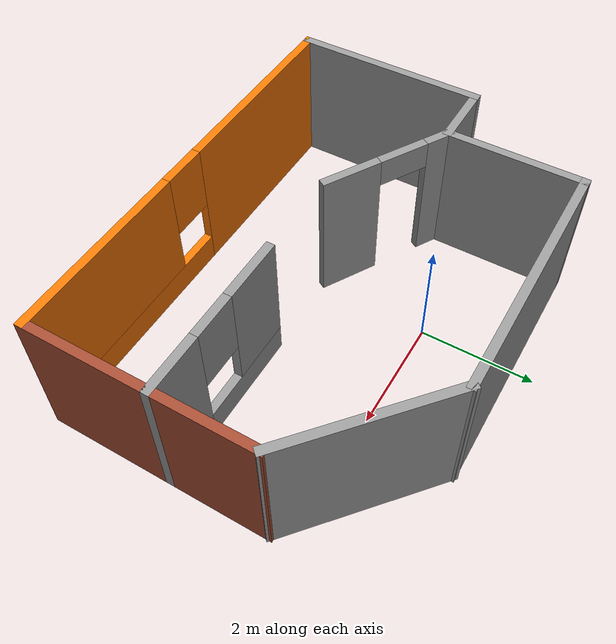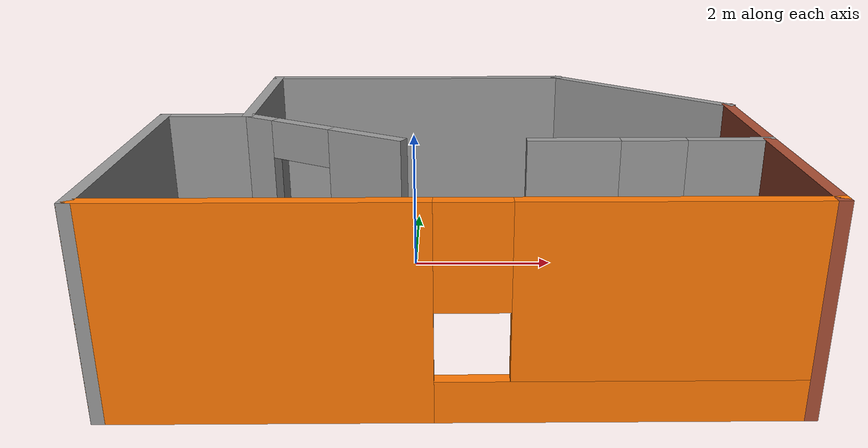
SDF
<?xml version='1.0'?>
<sdf version='1.6'>
  <model name='floor'>
    <pose frame=''>0.565384 -1.28462 0 0 -0 0</pose>
    <link name='Wall_16'>
      <collision name='Wall_16_Collision'>
        <geometry>
          <box>
            <size>3.5 0.15 2.5</size>
          </box>
        </geometry>
        <pose frame=''>0 0 1.25 0 -0 0</pose>
      </collision>
      <visual name='Wall_16_Visual'>
        <pose frame=''>0 0 1.25 0 -0 0</pose>
        <geometry>
          <box>
            <size>3.5 0.15 2.5</size>
          </box>
        </geometry>
        <material>
          <script>
            <uri>file://media/materials/scripts/gazebo.material</uri>
            <name>Gazebo/Grey</name>
          </script>
          <ambient>1 1 1 1</ambient>
        </material>
        <meta>
          <layer>0</layer>
        </meta>
      </visual>
      <pose frame=''>-3.81538 -1.19038 0 0 0 -1.5708</pose>
    </link>
    <link name='Wall_17'>
      <pose frame=''>-0.015384 -2.86538 0 0 -0 0</pose>
      <visual name='Wall_17_Visual_0'>
        <pose frame=''>-2.0525 0 1.25 0 -0 0</pose>
        <geometry>
          <box>
            <size>3.645 0.15 2.5</size>
          </box>
        </geometry>
        <material>
          <script>
            <uri>file://media/materials/scripts/gazebo.material</uri>
            <name>Gazebo/Grey</name>
          </script>
          <ambient>0.996078 0.47451 0.0196078 1</ambient>
        </material>
        <meta>
          <layer>0</layer>
        </meta>
      </visual>
      <collision name='Wall_17_Collision_0'>
        <geometry>
          <box>
            <size>3.645 0.15 2.5</size>
          </box>
        </geometry>
        <pose frame=''>-2.0525 0 1.25 0 -0 0</pose>
      </collision>
      <visual name='Wall_17_Visual_1'>
        <pose frame=''>1.8225 0 0.25 0 -0 0</pose>
        <geometry>
          <box>
            <size>4.105 0.15 0.5</size>
          </box>
        </geometry>
        <material>
          <script>
            <uri>file://media/materials/scripts/gazebo.material</uri>
            <name>Gazebo/Grey</name>
          </script>
          <ambient>0.996078 0.47451 0.0196078 1</ambient>
        </material>
        <meta>
          <layer>0</layer>
        </meta>
      </visual>
      <collision name='Wall_17_Collision_1'>
        <geometry>
          <box>
            <size>4.105 0.15 0.5</size>
          </box>
        </geometry>
        <pose frame=''>1.8225 0 0.25 0 -0 0</pose>
      </collision>
      <visual name='Wall_17_Visual_2'>
        <pose frame=''>2.2225 0 1.5 0 -0 0</pose>
        <geometry>
          <box>
            <size>3.305 0.15 2</size>
          </box>
        </geometry>
        <material>
          <script>
            <uri>file://media/materials/scripts/gazebo.material</uri>
            <name>Gazebo/Grey</name>
          </script>
          <ambient>0.996078 0.47451 0.0196078 1</ambient>
        </material>
        <meta>
          <layer>0</layer>
        </meta>
      </visual>
      <collision name='Wall_17_Collision_2'>
        <geometry>
          <box>
            <size>3.305 0.15 2</size>
          </box>
        </geometry>
        <pose frame=''>2.2225 0 1.5 0 -0 0</pose>
      </collision>
      <visual name='Wall_17_Visual_3'>
        <pose frame=''>0.17 0 1.9 0 -0 0</pose>
        <geometry>
          <box>
            <size>0.8 0.15 1.2</size>
          </box>
        </geometry>
        <material>
          <script>
            <uri>file://media/materials/scripts/gazebo.material</uri>
            <name>Gazebo/Grey</name>
          </script>
          <ambient>0.996078 0.47451 0.0196078 1</ambient>
        </material>
        <meta>
          <layer>0</layer>
        </meta>
      </visual>
      <collision name='Wall_17_Collision_3'>
        <geometry>
          <box>
            <size>0.8 0.15 1.2</size>
          </box>
        </geometry>
        <pose frame=''>0.17 0 1.9 0 -0 0</pose>
      </collision>
    </link>
    <link name='Wall_18'>
      <collision name='Wall_18_Collision'>
        <geometry>
          <box>
            <size>4 0.15 2.5</size>
          </box>
        </geometry>
        <pose frame=''>0 0 1.25 0 -0 0</pose>
      </collision>
      <visual name='Wall_18_Visual'>
        <pose frame=''>0 0 1.25 0 -0 0</pose>
        <geometry>
          <box>
            <size>4 0.15 2.5</size>
          </box>
        </geometry>
        <material>
          <script>
            <uri>file://media/materials/scripts/gazebo.material</uri>
            <name>Gazebo/Bricks</name>
          </script>
          <ambient>1 0.764706 0.305882 1</ambient>
        </material>
        <meta>
          <layer>0</layer>
        </meta>
      </visual>
      <pose frame=''>3.78462 -0.940384 0 0 -0 1.5708</pose>
    </link>
    <link name='Wall_20'>
      <collision name='Wall_20_Collision'>
        <geometry>
          <box>
            <size>1.25 0.15 2.5</size>
          </box>
        </geometry>
        <pose frame=''>0 0 1.25 0 -0 0</pose>
      </collision>
      <visual name='Wall_20_Visual'>
        <pose frame=''>0 0 1.25 0 -0 0</pose>
        <geometry>
          <box>
            <size>1.25 0.15 2.5</size>
          </box>
        </geometry>
        <material>
          <script>
            <uri>file://media/materials/scripts/gazebo.material</uri>
            <name>Gazebo/Grey</name>
          </script>
          <ambient>1 1 1 1</ambient>
        </material>
        <meta>
          <layer>0</layer>
        </meta>
      </visual>
      <pose frame=''>-3.26538 0.484616 0 0 -0 0</pose>
    </link>
    <link name='Wall_21'>
      <collision name='Wall_21_Collision'>
        <geometry>
          <box>
            <size>2.5 0.15 2.5</size>
          </box>
        </geometry>
        <pose frame=''>0 0 1.25 0 -0 0</pose>
      </collision>
      <visual name='Wall_21_Visual'>
        <pose frame=''>0 0 1.25 0 -0 0</pose>
        <geometry>
          <box>
            <size>2.5 0.15 2.5</size>
          </box>
        </geometry>
        <material>
          <script>
            <uri>file://media/materials/scripts/gazebo.material</uri>
            <name>Gazebo/Grey</name>
          </script>
          <ambient>1 1 1 1</ambient>
        </material>
        <meta>
          <layer>0</layer>
        </meta>
      </visual>
      <pose frame=''>-2.71538 1.65962 0 0 -0 1.5708</pose>
    </link>
    <link name='Wall_22'>
      <collision name='Wall_22_Collision'>
        <geometry>
          <box>
            <size>4.5 0.15 2.5</size>
          </box>
        </geometry>
        <pose frame=''>0 0 1.25 0 -0 0</pose>
      </collision>
      <visual name='Wall_22_Visual'>
        <pose frame=''>0 0 1.25 0 -0 0</pose>
        <geometry>
          <box>
            <size>4.5 0.15 2.5</size>
          </box>
        </geometry>
        <material>
          <script>
            <uri>file://media/materials/scripts/gazebo.material</uri>
            <name>Gazebo/Grey</name>
          </script>
          <ambient>1 1 1 1</ambient>
        </material>
        <meta>
          <layer>0</layer>
        </meta>
      </visual>
      <pose frame=''>-0.540384 2.83462 0 0 -0 0</pose>
    </link>
    <link name='Wall_23'>
      <collision name='Wall_23_Collision'>
        <geometry>
          <box>
            <size>2.98637 0.15 2.5</size>
          </box>
        </geometry>
        <pose frame=''>0 0 1.25 0 -0 0</pose>
      </collision>
      <visual name='Wall_23_Visual'>
        <pose frame=''>0 0 1.25 0 -0 0</pose>
        <geometry>
          <box>
            <size>2.98637 0.15 2.5</size>
          </box>
        </geometry>
        <material>
          <script>
            <uri>file://media/materials/scripts/gazebo.material</uri>
            <name>Gazebo/Grey</name>
          </script>
          <ambient>1 1 1 1</ambient>
        </material>
        <meta>
          <layer>0</layer>
        </meta>
      </visual>
      <pose frame=''>2.70962 1.90962 0 0 0 -0.710538</pose>
    </link>
    <link name='Wall_25'>
      <pose frame=''>-1.69781 -0.102884 0 0 0 -0.523599</pose>
      <visual name='Wall_25_Visual_0'>
        <pose frame=''>-0.985731 0 1.25 0 -0 0</pose>
        <geometry>
          <box>
            <size>0.528538 0.15 2.5</size>
          </box>
        </geometry>
        <material>
          <script>
            <uri>file://media/materials/scripts/gazebo.material</uri>
            <name>Gazebo/Grey</name>
          </script>
          <ambient>1 1 1 1</ambient>
        </material>
        <meta>
          <layer>0</layer>
        </meta>
      </visual>
      <collision name='Wall_25_Collision_0'>
        <geometry>
          <box>
            <size>0.528538 0.15 2.5</size>
          </box>
        </geometry>
        <pose frame=''>-0.985731 0 1.25 0 -0 0</pose>
      </collision>
      <visual name='Wall_25_Visual_1'>
        <pose frame=''>0.714269 0 1.25 0 -0 0</pose>
        <geometry>
          <box>
            <size>1.07146 0.15 2.5</size>
          </box>
        </geometry>
        <material>
          <script>
            <uri>file://media/materials/scripts/gazebo.material</uri>
            <name>Gazebo/Grey</name>
          </script>
          <ambient>1 1 1 1</ambient>
        </material>
        <meta>
          <layer>0</layer>
        </meta>
      </visual>
      <collision name='Wall_25_Collision_1'>
        <geometry>
          <box>
            <size>1.07146 0.15 2.5</size>
          </box>
        </geometry>
        <pose frame=''>0.714269 0 1.25 0 -0 0</pose>
      </collision>
      <visual name='Wall_25_Visual_2'>
        <pose frame=''>-0.271462 0 2.25 0 -0 0</pose>
        <geometry>
          <box>
            <size>0.9 0.15 0.5</size>
          </box>
        </geometry>
        <material>
          <script>
            <uri>file://media/materials/scripts/gazebo.material</uri>
            <name>Gazebo/Grey</name>
          </script>
          <ambient>1 1 1 1</ambient>
        </material>
        <meta>
          <layer>0</layer>
        </meta>
      </visual>
      <collision name='Wall_25_Collision_2'>
        <geometry>
          <box>
            <size>0.9 0.15 0.5</size>
          </box>
        </geometry>
        <pose frame=''>-0.271462 0 2.25 0 -0 0</pose>
      </collision>
    </link>
    <link name='Wall_29'>
      <pose frame=''>2.35962 -0.725384 0 0 -0 3.14159</pose>
      <visual name='Wall_29_Visual_0'>
        <pose frame=''>-0.9625 0 1.25 0 -0 0</pose>
        <geometry>
          <box>
            <size>1.075 0.15 2.5</size>
          </box>
        </geometry>
        <material>
          <script>
            <uri>file://media/materials/scripts/gazebo.material</uri>
            <name>Gazebo/Grey</name>
          </script>
          <ambient>1 1 1 1</ambient>
        </material>
        <meta>
          <layer>0</layer>
        </meta>
      </visual>
      <collision name='Wall_29_Collision_0'>
        <geometry>
          <box>
            <size>1.075 0.15 2.5</size>
          </box>
        </geometry>
        <pose frame=''>-0.9625 0 1.25 0 -0 0</pose>
      </collision>
      <visual name='Wall_29_Visual_1'>
        <pose frame=''>0.5375 0 0.25 0 -0 0</pose>
        <geometry>
          <box>
            <size>1.925 0.15 0.5</size>
          </box>
        </geometry>
        <material>
          <script>
            <uri>file://media/materials/scripts/gazebo.material</uri>
            <name>Gazebo/Grey</name>
          </script>
          <ambient>1 1 1 1</ambient>
        </material>
        <meta>
          <layer>0</layer>
        </meta>
      </visual>
      <collision name='Wall_29_Collision_1'>
        <geometry>
          <box>
            <size>1.925 0.15 0.5</size>
          </box>
        </geometry>
        <pose frame=''>0.5375 0 0.25 0 -0 0</pose>
      </collision>
      <visual name='Wall_29_Visual_2'>
        <pose frame=''>0.9375 0 1.5 0 -0 0</pose>
        <geometry>
          <box>
            <size>1.125 0.15 2</size>
          </box>
        </geometry>
        <material>
          <script>
            <uri>file://media/materials/scripts/gazebo.material</uri>
            <name>Gazebo/Grey</name>
          </script>
          <ambient>1 1 1 1</ambient>
        </material>
        <meta>
          <layer>0</layer>
        </meta>
      </visual>
      <collision name='Wall_29_Collision_2'>
        <geometry>
          <box>
            <size>1.125 0.15 2</size>
          </box>
        </geometry>
        <pose frame=''>0.9375 0 1.5 0 -0 0</pose>
      </collision>
      <visual name='Wall_29_Visual_3'>
        <pose frame=''>-0.025 0 1.9 0 -0 0</pose>
        <geometry>
          <box>
            <size>0.8 0.15 1.2</size>
          </box>
        </geometry>
        <material>
          <script>
            <uri>file://media/materials/scripts/gazebo.material</uri>
            <name>Gazebo/Grey</name>
          </script>
          <ambient>1 1 1 1</ambient>
        </material>
        <meta>
          <layer>0</layer>
        </meta>
      </visual>
      <collision name='Wall_29_Collision_3'>
        <geometry>
          <box>
            <size>0.8 0.15 1.2</size>
          </box>
        </geometry>
        <pose frame=''>-0.025 0 1.9 0 -0 0</pose>
      </collision>
    </link>
    <static>1</static>
  </model>
</sdf>
